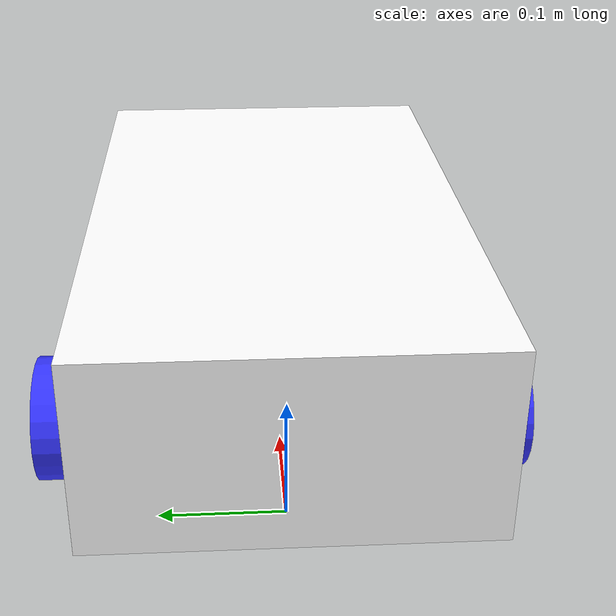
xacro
<?xml version="1.0"?>
<robot xmlns:xacro="http://www.ros.org/wiki/xacro" >

    <xacro:include filename="inertial_macros.xacro"/>

    <!-- custom properties and vairiables -->
    <xacro:property name="chassis_length" value="0.5"/>
    <xacro:property name="chassis_width" value="0.3"/>
    <xacro:property name="chassis_height" value="0.15"/>
    <xacro:property name="wheel_radius" value="0.05"/>
    <xacro:property name="wheel_height" value="0.04"/>

    <material name="white">
        <color rgba="1 1 1 1" />
    </material>

    <material name="orange">
        <color rgba="1 0.3 0.1 1"/>
    </material>

    <material name="blue">
        <color rgba="0.2 0.2 1 1"/>
    </material>

    <material name="black">
        <color rgba="0 0 0 1"/>
    </material>

    <!-- BASE LINK -->

    <link name="base_link">

    </link>

    <!-- CHASSIS LINK -->

    <joint name="chassis_joint" type="fixed">
        <parent link="base_link"/>
        <child link="chassis"/>
        <origin xyz="-0.1 0 0.05"/>
    </joint>

    <link name="chassis">
        <visual>
            <origin xyz="${chassis_length/2} 0 ${chassis_height/2}"/>
            <geometry>
                <box size="${chassis_length} ${chassis_width} ${chassis_height}"/>
            </geometry>
            <material name="white"/>
        </visual>
        <collision>
            <origin xyz="${chassis_length/2} 0 ${chassis_height/2}"/>
            <geometry>
                <box size="${chassis_length} ${chassis_width} ${chassis_height}"/>
            </geometry>
        </collision>
        <xacro:inertial_box mass="0.5" x="${chassis_length}" y="${chassis_width}" z="${chassis_height}">
            <origin xyz="${chassis_length/2} 0 ${chassis_height/2}" rpy="0 0 0"/>
        </xacro:inertial_box>
    </link>

    <gazebo reference="chassis">
        <material>Gazebo/White</material>
    </gazebo>

    <!-- LEFT WHEEL LINK -->

    <joint name="left_wheel_joint" type="continuous">
        <parent link="chassis"/>
        <child link="left_wheel"/>
       <origin xyz="${chassis_length/3} ${wheel_radius/2+chassis_width/2} 0" rpy="${pi/2} 0 0" />
        <axis xyz="0 0 1"/>
    </joint>

    <link name="left_wheel">
        <visual>
            <geometry>
                <cylinder radius="${wheel_radius}" length="${wheel_height}"/>
            </geometry>
            <material name="blue"/>
        </visual>
        <collision>
            <geometry>
                <cylinder radius="0.05" length="0.04"/>
            </geometry>
        </collision>
        <xacro:inertial_cylinder mass="0.1" length="0.04" radius="0.05">
            <origin xyz="0 0 0" rpy="0 0 0"/>
        </xacro:inertial_cylinder>
    </link>

    <gazebo reference="left_wheel">
        <material>Gazebo/Blue</material>
    </gazebo>

    <!-- RIGHT WHEEL LINK -->

    <joint name="right_wheel_joint" type="continuous">
        <parent link="chassis"/>
        <child link="right_wheel"/>
        <origin xyz="${chassis_length/3} -${wheel_radius/2+chassis_width/2} 0" rpy="${pi/2} 0 0" />
        <axis xyz="0 0 -1"/>
    </joint>

    <link name="right_wheel">
        <visual>
            <geometry>
                <cylinder radius="${wheel_radius}" length="${wheel_height}"/>
            </geometry>
            <material name="blue"/>
        </visual>
        <collision>
            <geometry>
                <cylinder radius="0.05" length="0.04"/>
            </geometry>
        </collision>
        <xacro:inertial_cylinder mass="0.1" length="0.04" radius="0.05">
            <origin xyz="0 0 0" rpy="0 0 0"/>
        </xacro:inertial_cylinder>
    </link>

    <gazebo reference="right_wheel">
        <material>Gazebo/Blue</material>
    </gazebo>

    <!-- CASTER WHEEL LINK -->

    <joint name="caster_wheel_joint" type="fixed">
        <parent link="chassis"/>
        <child link="caster_wheel"/>
        <origin xyz="${2*chassis_length/3} 0 0"/>
    </joint>

    <link name="caster_wheel">
        <visual>
            <geometry>
                <sphere radius="0.05"/>
            </geometry>
            <material name="black"/>
        </visual>
        <collision>
            <geometry>
                <sphere radius="0.05"/>
            </geometry>
        </collision>
        <xacro:inertial_sphere mass="0.1" radius="0.05">
            <origin xyz="0 0 0" rpy="0 0 0"/>
        </xacro:inertial_sphere>
    </link>

    <gazebo reference="caster_wheel">
        <material>Gazebo/Black</material>
        <mu1 value="0.001"/>
        <mu2 value="0.001"/>
    </gazebo>

</robot>
